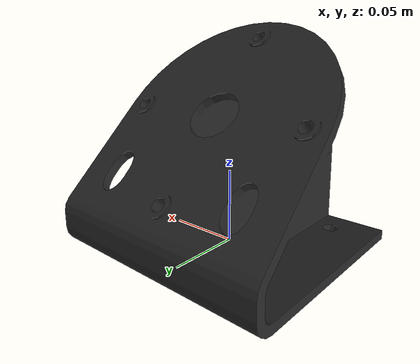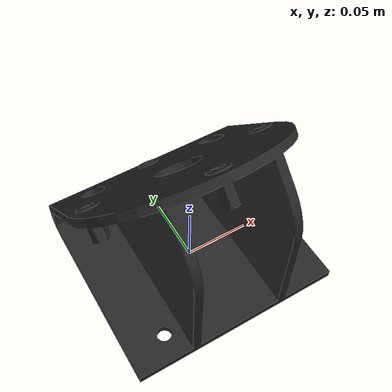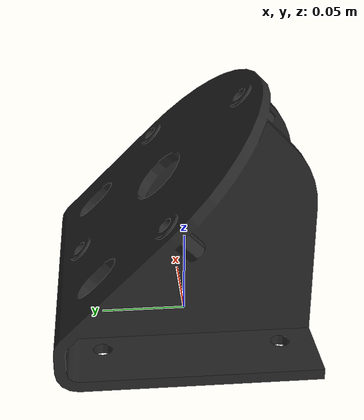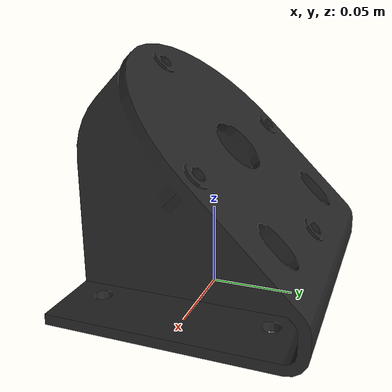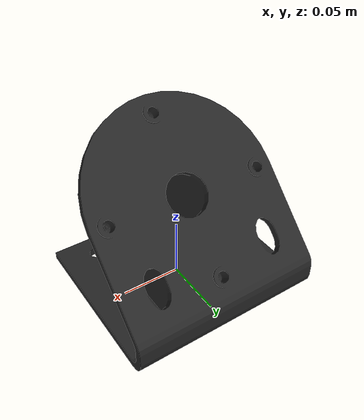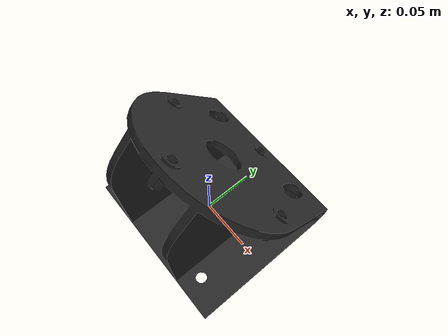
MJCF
<mujoco model="arm_mount">
  <default>
    <default class="visual">
      <geom group="2" type="mesh" contype="0" conaffinity="0"/>
    </default>
    <default class="collision">
      <geom group="3" type="mesh"/>
    </default>
  </default>
  <asset>
    <material name="mtl_arm_mount" specular="0.20000000000000004" shininess="1.0" rgba="0.14901961 0.14901961 0.14901961 1.0"/>
    <mesh file="arm_mount.obj"/>
  </asset>
  <worldbody>
    <body name="arm_mount">
      <geom material="mtl_arm_mount" mesh="arm_mount" class="visual"/>
      <geom mesh="arm_mount" class="collision"/>
    </body>
  </worldbody>
</mujoco>
